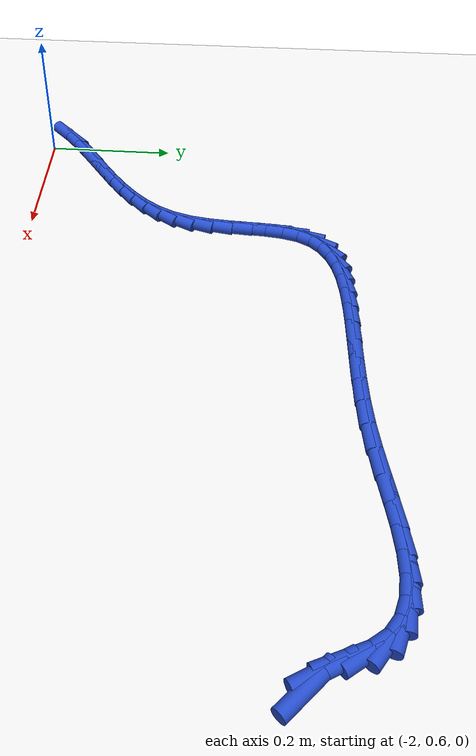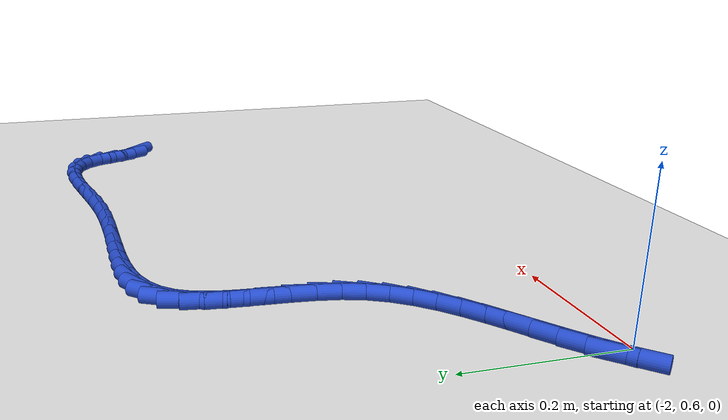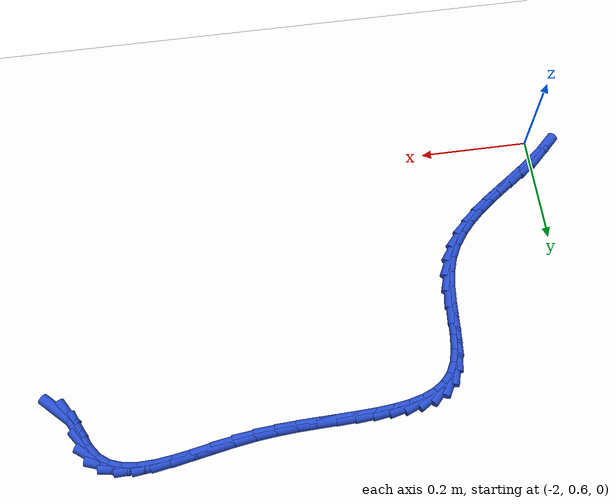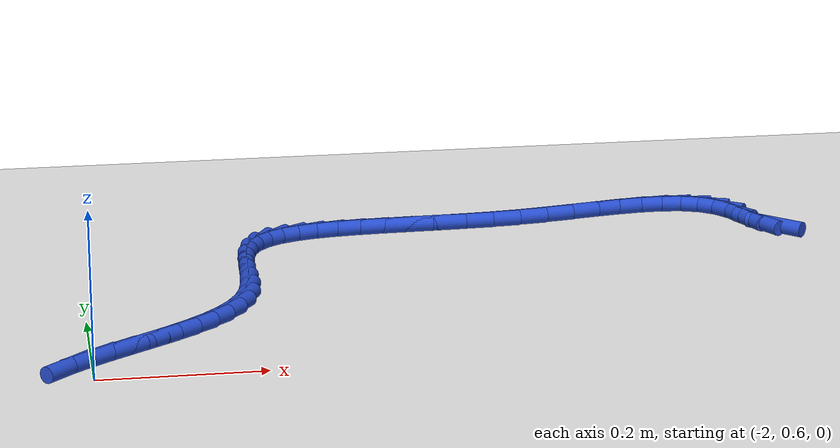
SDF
<sdf version="1.6">
 <world name="default">
  <model name="ground_plane">
   <static>1</static>
   <link name="link">
    <collision name="collision">
     <geometry><plane><normal>0 0 1</normal><size>100 100</size></plane></geometry>
     <surface><friction><ode><mu>100</mu><mu2>50</mu2></ode></friction></surface>
    </collision>
    <visual name="visual">
     <cast_shadows>0</cast_shadows>
     <geometry><plane><normal>0 0 1</normal><size>100 100</size></plane></geometry>
     <material>
      <script><uri>file://media/materials/scripts/gazebo.material</uri><name>Gazebo/WhiteGlow</name></script>
     </material>
    </visual>
   </link>
  </model>
  <model name="line">
   <link name="link_61">
    <pose>-1.0986709384747162 1.016808562275391 0.01 0 1.57 -0.7661085087782579</pose>
    <collision name="collision">
     <geometry><cylinder><radius>0.01</radius><length>0.08</length></cylinder></geometry>
    </collision>
    <visual name="visual">
     <material>
      <script><name>Gazebo/Blue</name><uri>file://media/materials/scripts/gazebo.material</uri></script>
     </material>
     <geometry><cylinder><radius>0.01</radius><length>0.08</length></cylinder></geometry>
    </visual>
   </link>
   <link name="link_62">
    <pose>-1.1168232129061668 1.034273703826723 0.01 0 1.57 -1.0577025748372646</pose>
    <collision name="collision">
     <geometry><cylinder><radius>0.01</radius><length>0.08</length></cylinder></geometry>
    </collision>
    <visual name="visual">
     <material>
      <script><name>Gazebo/Blue</name><uri>file://media/materials/scripts/gazebo.material</uri></script>
     </material>
     <geometry><cylinder><radius>0.01</radius><length>0.08</length></cylinder></geometry>
    </visual>
   </link>
   <link name="link_63">
    <pose>-1.1303156460028847 1.0582207654456048 0.01 0 1.57 -1.15449110105714</pose>
    <collision name="collision">
     <geometry><cylinder><radius>0.01</radius><length>0.08</length></cylinder></geometry>
    </collision>
    <visual name="visual">
     <material>
      <script><name>Gazebo/Blue</name><uri>file://media/materials/scripts/gazebo.material</uri></script>
     </material>
     <geometry><cylinder><radius>0.01</radius><length>0.08</length></cylinder></geometry>
    </visual>
   </link>
   <link name="link_64">
    <pose>-1.1419017484753529 1.0844248800468612 0.01 0 1.57 -0.946359937862854</pose>
    <collision name="collision">
     <geometry><cylinder><radius>0.01</radius><length>0.08</length></cylinder></geometry>
    </collision>
    <visual name="visual">
     <material>
      <script><name>Gazebo/Blue</name><uri>file://media/materials/scripts/gazebo.material</uri></script>
     </material>
     <geometry><cylinder><radius>0.01</radius><length>0.08</length></cylinder></geometry>
    </visual>
   </link>
   <link name="link_65">
    <pose>-1.156742101807256 1.1050185254911487 0.01 0 1.57 -0.628031557783788</pose>
    <collision name="collision">
     <geometry><cylinder><radius>0.01</radius><length>0.08</length></cylinder></geometry>
    </collision>
    <visual name="visual">
     <material>
      <script><name>Gazebo/Blue</name><uri>file://media/materials/scripts/gazebo.material</uri></script>
     </material>
     <geometry><cylinder><radius>0.01</radius><length>0.08</length></cylinder></geometry>
    </visual>
   </link>
   <link name="link_66">
    <pose>-1.1757560321607639 1.1188246194903382 0.01 0 1.57 -0.3377729639803013</pose>
    <collision name="collision">
     <geometry><cylinder><radius>0.01</radius><length>0.08</length></cylinder></geometry>
    </collision>
    <visual name="visual">
     <material>
      <script><name>Gazebo/Blue</name><uri>file://media/materials/scripts/gazebo.material</uri></script>
     </material>
     <geometry><cylinder><radius>0.01</radius><length>0.08</length></cylinder></geometry>
    </visual>
   </link>
   <link name="link_67">
    <pose>-1.1985004093002738 1.12681319853044 0.01 0 1.57 -0.12011137837838703</pose>
    <collision name="collision">
     <geometry><cylinder><radius>0.01</radius><length>0.08</length></cylinder></geometry>
    </collision>
    <visual name="visual">
     <material>
      <script><name>Gazebo/Blue</name><uri>file://media/materials/scripts/gazebo.material</uri></script>
     </material>
     <geometry><cylinder><radius>0.01</radius><length>0.08</length></cylinder></geometry>
    </visual>
   </link>
   <link name="link_68">
    <pose>-1.2245316754511222 1.1299549728637164 0.01 0 1.57 0.025425873986326102</pose>
    <collision name="collision">
     <geometry><cylinder><radius>0.01</radius><length>0.08</length></cylinder></geometry>
    </collision>
    <visual name="visual">
     <material>
      <script><name>Gazebo/Blue</name><uri>file://media/materials/scripts/gazebo.material</uri></script>
     </material>
     <geometry><cylinder><radius>0.01</radius><length>0.08</length></cylinder></geometry>
    </visual>
   </link>
   <link name="link_69">
    <pose>-1.2534062728386464 1.1292206527424316 0.01 0 1.57 0.1158585809026528</pose>
    <collision name="collision">
     <geometry><cylinder><radius>0.01</radius><length>0.08</length></cylinder></geometry>
    </collision>
    <visual name="visual">
     <material>
      <script><name>Gazebo/Blue</name><uri>file://media/materials/scripts/gazebo.material</uri></script>
     </material>
     <geometry><cylinder><radius>0.01</radius><length>0.08</length></cylinder></geometry>
    </visual>
   </link>
   <link name="link_70">
    <pose>-1.284680643688184 1.125580948418849 0.01 0 1.57 0.16620100585787467</pose>
    <collision name="collision">
     <geometry><cylinder><radius>0.01</radius><length>0.08</length></cylinder></geometry>
    </collision>
    <visual name="visual">
     <material>
      <script><name>Gazebo/Blue</name><uri>file://media/materials/scripts/gazebo.material</uri></script>
     </material>
     <geometry><cylinder><radius>0.01</radius><length>0.08</length></cylinder></geometry>
    </visual>
   </link>
   <link name="link_71">
    <pose>-1.31791123022507 1.1200065701452318 0.01 0 1.57 0.1860147328124729</pose>
    <collision name="collision">
     <geometry><cylinder><radius>0.01</radius><length>0.08</length></cylinder></geometry>
    </collision>
    <visual name="visual">
     <material>
      <script><name>Gazebo/Blue</name><uri>file://media/materials/scripts/gazebo.material</uri></script>
     </material>
     <geometry><cylinder><radius>0.01</radius><length>0.08</length></cylinder></geometry>
    </visual>
   </link>
   <link name="link_72">
    <pose>-1.3526544746746436 1.1134682281738448 0.01 0 1.57 0.1804010696848276</pose>
    <collision name="collision">
     <geometry><cylinder><radius>0.01</radius><length>0.08</length></cylinder></geometry>
    </collision>
    <visual name="visual">
     <material>
      <script><name>Gazebo/Blue</name><uri>file://media/materials/scripts/gazebo.material</uri></script>
     </material>
     <geometry><cylinder><radius>0.01</radius><length>0.08</length></cylinder></geometry>
    </visual>
   </link>
   <link name="link_73">
    <pose>-1.3884668192622402 1.10693663275695 0.01 0 1.57 0.15126325079539468</pose>
    <collision name="collision">
     <geometry><cylinder><radius>0.01</radius><length>0.08</length></cylinder></geometry>
    </collision>
    <visual name="visual">
     <material>
      <script><name>Gazebo/Blue</name><uri>file://media/materials/scripts/gazebo.material</uri></script>
     </material>
     <geometry><cylinder><radius>0.01</radius><length>0.08</length></cylinder></geometry>
    </visual>
   </link>
   <link name="link_74">
    <pose>-1.4249047062131979 1.1013824941468122 0.01 0 1.57 0.10404079286727165</pose>
    <collision name="collision">
     <geometry><cylinder><radius>0.01</radius><length>0.08</length></cylinder></geometry>
    </collision>
    <visual name="visual">
     <material>
      <script><name>Gazebo/Blue</name><uri>file://media/materials/scripts/gazebo.material</uri></script>
     </material>
     <geometry><cylinder><radius>0.01</radius><length>0.08</length></cylinder></geometry>
    </visual>
   </link>
   <link name="link_75">
    <pose>-1.4615363392845073 1.0975574988248649 0.01 0 1.57 0.06388331356993361</pose>
    <collision name="collision">
     <geometry><cylinder><radius>0.01</radius><length>0.08</length></cylinder></geometry>
    </collision>
    <visual name="visual">
     <material>
      <script><name>Gazebo/Blue</name><uri>file://media/materials/scripts/gazebo.material</uri></script>
     </material>
     <geometry><cylinder><radius>0.01</radius><length>0.08</length></cylinder></geometry>
    </visual>
   </link>
   <link name="link_76">
    <pose>-1.4979829420140895 1.0952259965301565 0.01 0 1.57 0.037637720357709056</pose>
    <collision name="collision">
     <geometry><cylinder><radius>0.01</radius><length>0.08</length></cylinder></geometry>
    </collision>
    <visual name="visual">
     <material>
      <script><name>Gazebo/Blue</name><uri>file://media/materials/scripts/gazebo.material</uri></script>
     </material>
     <geometry><cylinder><radius>0.01</radius><length>0.08</length></cylinder></geometry>
    </visual>
   </link>
   <link name="link_77">
    <pose>-1.533880671182647 1.0938742494838938 0.01 0 1.57 0.025312438782779025</pose>
    <collision name="collision">
     <geometry><cylinder><radius>0.01</radius><length>0.08</length></cylinder></geometry>
    </collision>
    <visual name="visual">
     <material>
      <script><name>Gazebo/Blue</name><uri>file://media/materials/scripts/gazebo.material</uri></script>
     </material>
     <geometry><cylinder><radius>0.01</radius><length>0.08</length></cylinder></geometry>
    </visual>
   </link>
   <link name="link_78">
    <pose>-1.5688656844090512 1.092988504298784 0.01 0 1.57 0.02768617504929569</pose>
    <collision name="collision">
     <geometry><cylinder><radius>0.01</radius><length>0.08</length></cylinder></geometry>
    </collision>
    <visual name="visual">
     <material>
      <script><name>Gazebo/Blue</name><uri>file://media/materials/scripts/gazebo.material</uri></script>
     </material>
     <geometry><cylinder><radius>0.01</radius><length>0.08</length></cylinder></geometry>
    </visual>
   </link>
   <link name="link_79">
    <pose>-1.6025741393121753 1.0920550075875377 0.01 0 1.57 0.046585924753033456</pose>
    <collision name="collision">
     <geometry><cylinder><radius>0.01</radius><length>0.08</length></cylinder></geometry>
    </collision>
    <visual name="visual">
     <material>
      <script><name>Gazebo/Blue</name><uri>file://media/materials/scripts/gazebo.material</uri></script>
     </material>
     <geometry><cylinder><radius>0.01</radius><length>0.08</length></cylinder></geometry>
    </visual>
   </link>
   <link name="link_80">
    <pose>-1.6346421935108923 1.0905600059628644 0.01 0 1.57 0.08528609727713993</pose>
    <collision name="collision">
     <geometry><cylinder><radius>0.01</radius><length>0.08</length></cylinder></geometry>
    </collision>
    <visual name="visual">
     <material>
      <script><name>Gazebo/Blue</name><uri>file://media/materials/scripts/gazebo.material</uri></script>
     </material>
     <geometry><cylinder><radius>0.01</radius><length>0.08</length></cylinder></geometry>
    </visual>
   </link>
   <link name="link_81">
    <pose>-1.6647060046240738 1.0879897460374728 0.01 0 1.57 0.14906342334819844</pose>
    <collision name="collision">
     <geometry><cylinder><radius>0.01</radius><length>0.08</length></cylinder></geometry>
    </collision>
    <visual name="visual">
     <material>
      <script><name>Gazebo/Blue</name><uri>file://media/materials/scripts/gazebo.material</uri></script>
     </material>
     <geometry><cylinder><radius>0.01</radius><length>0.08</length></cylinder></geometry>
    </visual>
   </link>
   <link name="link_82">
    <pose>-1.6924017302705938 1.0838304744240728 0.01 0 1.57 0.24577352876729924</pose>
    <collision name="collision">
     <geometry><cylinder><radius>0.01</radius><length>0.08</length></cylinder></geometry>
    </collision>
    <visual name="visual">
     <material>
      <script><name>Gazebo/Blue</name><uri>file://media/materials/scripts/gazebo.material</uri></script>
     </material>
     <geometry><cylinder><radius>0.01</radius><length>0.08</length></cylinder></geometry>
    </visual>
   </link>
   <link name="link_83">
    <pose>-1.7173655280693252 1.0775684377353731 0.01 0 1.57 0.38567340300746383</pose>
    <collision name="collision">
     <geometry><cylinder><radius>0.01</radius><length>0.08</length></cylinder></geometry>
    </collision>
    <visual name="visual">
     <material>
      <script><name>Gazebo/Blue</name><uri>file://media/materials/scripts/gazebo.material</uri></script>
     </material>
     <geometry><cylinder><radius>0.01</radius><length>0.08</length></cylinder></geometry>
    </visual>
   </link>
   <link name="link_84">
    <pose>-1.73923355563914 1.068689882584084 0.01 0 1.57 0.5780291835703463</pose>
    <collision name="collision">
     <geometry><cylinder><radius>0.01</radius><length>0.08</length></cylinder></geometry>
    </collision>
    <visual name="visual">
     <material>
      <script><name>Gazebo/Blue</name><uri>file://media/materials/scripts/gazebo.material</uri></script>
     </material>
     <geometry><cylinder><radius>0.01</radius><length>0.08</length></cylinder></geometry>
    </visual>
   </link>
   <link name="link_85">
    <pose>-1.7576419705989113 1.0566810555829143 0.01 0 1.57 0.8206999444100108</pose>
    <collision name="collision">
     <geometry><cylinder><radius>0.01</radius><length>0.08</length></cylinder></geometry>
    </collision>
    <visual name="visual">
     <material>
      <script><name>Gazebo/Blue</name><uri>file://media/materials/scripts/gazebo.material</uri></script>
     </material>
     <geometry><cylinder><radius>0.01</radius><length>0.08</length></cylinder></geometry>
    </visual>
   </link>
   <link name="link_86">
    <pose>-1.7722269305675116 1.041028203344573 0.01 0 1.57 1.0871626164995747</pose>
    <collision name="collision">
     <geometry><cylinder><radius>0.01</radius><length>0.08</length></cylinder></geometry>
    </collision>
    <visual name="visual">
     <material>
      <script><name>Gazebo/Blue</name><uri>file://media/materials/scripts/gazebo.material</uri></script>
     </material>
     <geometry><cylinder><radius>0.01</radius><length>0.08</length></cylinder></geometry>
    </visual>
   </link>
   <link name="link_87">
    <pose>-1.782629692463251 1.0212224047163236 0.01 0 1.57 1.309896327463428</pose>
    <collision name="collision">
     <geometry><cylinder><radius>0.01</radius><length>0.08</length></cylinder></geometry>
    </collision>
    <visual name="visual">
     <material>
      <script><name>Gazebo/Blue</name><uri>file://media/materials/scripts/gazebo.material</uri></script>
     </material>
     <geometry><cylinder><radius>0.01</radius><length>0.08</length></cylinder></geometry>
    </visual>
   </link>
   <link name="link_88">
    <pose>-1.7890267797682853 0.9972619716697152 0.01 0 1.57 1.440290922737253</pose>
    <collision name="collision">
     <geometry><cylinder><radius>0.01</radius><length>0.08</length></cylinder></geometry>
    </collision>
    <visual name="visual">
     <material>
      <script><name>Gazebo/Blue</name><uri>file://media/materials/scripts/gazebo.material</uri></script>
     </material>
     <geometry><cylinder><radius>0.01</radius><length>0.08</length></cylinder></geometry>
    </visual>
   </link>
   <link name="link_89">
    <pose>-1.7925929814836794 0.9700911996772748 0.01 0 1.57 1.5020672415828666</pose>
    <collision name="collision">
     <geometry><cylinder><radius>0.01</radius><length>0.08</length></cylinder></geometry>
    </collision>
    <visual name="visual">
     <material>
      <script><name>Gazebo/Blue</name><uri>file://media/materials/scripts/gazebo.material</uri></script>
     </material>
     <geometry><cylinder><radius>0.01</radius><length>0.08</length></cylinder></geometry>
    </visual>
   </link>
   <link name="link_90">
    <pose>-1.7946122195230323 0.9407578015215693 0.01 0 1.57 1.513182206559518</pose>
    <collision name="collision">
     <geometry><cylinder><radius>0.01</radius><length>0.08</length></cylinder></geometry>
    </collision>
    <visual name="visual">
     <material>
      <script><name>Gazebo/Blue</name><uri>file://media/materials/scripts/gazebo.material</uri></script>
     </material>
     <geometry><cylinder><radius>0.01</radius><length>0.08</length></cylinder></geometry>
    </visual>
   </link>
   <link name="link_91">
    <pose>-1.7963684157999416 0.9103094899851641 0.01 0 1.57 1.4800409194499382</pose>
    <collision name="collision">
     <geometry><cylinder><radius>0.01</radius><length>0.08</length></cylinder></geometry>
    </collision>
    <visual name="visual">
     <material>
      <script><name>Gazebo/Blue</name><uri>file://media/materials/scripts/gazebo.material</uri></script>
     </material>
     <geometry><cylinder><radius>0.01</radius><length>0.08</length></cylinder></geometry>
    </visual>
   </link>
   <link name="link_92">
    <pose>-1.7991454922280048 0.8797939778506259 0.01 0 1.57 1.4004018740629387</pose>
    <collision name="collision">
     <geometry><cylinder><radius>0.01</radius><length>0.08</length></cylinder></geometry>
    </collision>
    <visual name="visual">
     <material>
      <script><name>Gazebo/Blue</name><uri>file://media/materials/scripts/gazebo.material</uri></script>
     </material>
     <geometry><cylinder><radius>0.01</radius><length>0.08</length></cylinder></geometry>
    </visual>
   </link>
   <link name="link_93">
    <pose>-1.804227370720822 0.8502589779005212 0.01 0 1.57 1.266217626793724</pose>
    <collision name="collision">
     <geometry><cylinder><radius>0.01</radius><length>0.08</length></cylinder></geometry>
    </collision>
    <visual name="visual">
     <material>
      <script><name>Gazebo/Blue</name><uri>file://media/materials/scripts/gazebo.material</uri></script>
     </material>
     <geometry><cylinder><radius>0.01</radius><length>0.08</length></cylinder></geometry>
    </visual>
   </link>
   <link name="link_94">
    <pose>-1.81287887522662 0.8227379887802092 0.01 0 1.57 1.1013077468939594</pose>
    <collision name="collision">
     <geometry><cylinder><radius>0.01</radius><length>0.08</length></cylinder></geometry>
    </collision>
    <visual name="visual">
     <material>
      <script><name>Gazebo/Blue</name><uri>file://media/materials/scripts/gazebo.material</uri></script>
     </material>
     <geometry><cylinder><radius>0.01</radius><length>0.08</length></cylinder></geometry>
    </visual>
   </link>
   <link name="link_95">
    <pose>-1.8255881072937448 0.797686414110317 0.01 0 1.57 0.9542079987759067</pose>
    <collision name="collision">
     <geometry><cylinder><radius>0.01</radius><length>0.08</length></cylinder></geometry>
    </collision>
    <visual name="visual">
     <material>
      <script><name>Gazebo/Blue</name><uri>file://media/materials/scripts/gazebo.material</uri></script>
     </material>
     <geometry><cylinder><radius>0.01</radius><length>0.08</length></cylinder></geometry>
    </visual>
   </link>
   <link name="link_96">
    <pose>-1.8418138811906086 0.7747935847734622 0.01 0 1.57 0.8342617564033474</pose>
    <collision name="collision">
     <geometry><cylinder><radius>0.01</radius><length>0.08</length></cylinder></geometry>
    </collision>
    <visual name="visual">
     <material>
      <script><name>Gazebo/Blue</name><uri>file://media/materials/scripts/gazebo.material</uri></script>
     </material>
     <geometry><cylinder><radius>0.01</radius><length>0.08</length></cylinder></geometry>
    </visual>
   </link>
   <link name="link_97">
    <pose>-1.8609441417907553 0.7536960853369932 0.01 0 1.57 0.7426600058220382</pose>
    <collision name="collision">
     <geometry><cylinder><radius>0.01</radius><length>0.08</length></cylinder></geometry>
    </collision>
    <visual name="visual">
     <material>
      <script><name>Gazebo/Blue</name><uri>file://media/materials/scripts/gazebo.material</uri></script>
     </material>
     <geometry><cylinder><radius>0.01</radius><length>0.08</length></cylinder></geometry>
    </visual>
   </link>
   <link name="link_98">
    <pose>-1.8823668339677275 0.7340305003682601 0.01 0 1.57 0.6777590690856675</pose>
    <collision name="collision">
     <geometry><cylinder><radius>0.01</radius><length>0.08</length></cylinder></geometry>
    </collision>
    <visual name="visual">
     <material>
      <script><name>Gazebo/Blue</name><uri>file://media/materials/scripts/gazebo.material</uri></script>
     </material>
     <geometry><cylinder><radius>0.01</radius><length>0.08</length></cylinder></geometry>
    </visual>
   </link>
   <link name="link_99">
    <pose>-1.9054699025950699 0.7154334144346124 0.01 0 1.57 0.6372086228797486</pose>
    <collision name="collision">
     <geometry><cylinder><radius>0.01</radius><length>0.08</length></cylinder></geometry>
    </collision>
    <visual name="visual">
     <material>
      <script><name>Gazebo/Blue</name><uri>file://media/materials/scripts/gazebo.material</uri></script>
     </material>
     <geometry><cylinder><radius>0.01</radius><length>0.08</length></cylinder></geometry>
    </visual>
   </link>
   <link name="link_100">
    <pose>-1.9296412925463247 0.6975414121033994 0.01 0 1.57 0.6191503250979705</pose>
    <collision name="collision">
     <geometry><cylinder><radius>0.01</radius><length>0.08</length></cylinder></geometry>
    </collision>
    <visual name="visual">
     <material>
      <script><name>Gazebo/Blue</name><uri>file://media/materials/scripts/gazebo.material</uri></script>
     </material>
     <geometry><cylinder><radius>0.01</radius><length>0.08</length></cylinder></geometry>
    </visual>
   </link>
   <link name="link_101">
    <pose>-1.9542689486950355 0.6799910779419709 0.01 0 1.57 0.6227391598527053</pose>
    <collision name="collision">
     <geometry><cylinder><radius>0.01</radius><length>0.08</length></cylinder></geometry>
    </collision>
    <visual name="visual">
     <material>
      <script><name>Gazebo/Blue</name><uri>file://media/materials/scripts/gazebo.material</uri></script>
     </material>
     <geometry><cylinder><radius>0.01</radius><length>0.08</length></cylinder></geometry>
    </visual>
   </link>
   <link name="link_102">
    <pose>-1.978740815914746 0.6624189965176759 0.01 0 1.57 0.6483226295268837</pose>
    <collision name="collision">
     <geometry><cylinder><radius>0.01</radius><length>0.08</length></cylinder></geometry>
    </collision>
    <visual name="visual">
     <material>
      <script><name>Gazebo/Blue</name><uri>file://media/materials/scripts/gazebo.material</uri></script>
     </material>
     <geometry><cylinder><radius>0.01</radius><length>0.08</length></cylinder></geometry>
    </visual>
   </link>
   <link name="link_103">
    <pose>-2.0024448390789993 0.6444617523978643 0.01 0 1.57 0.6974388594456521</pose>
    <collision name="collision">
     <geometry><cylinder><radius>0.01</radius><length>0.08</length></cylinder></geometry>
    </collision>
    <visual name="visual">
     <material>
      <script><name>Gazebo/Blue</name><uri>file://media/materials/scripts/gazebo.material</uri></script>
     </material>
     <geometry><cylinder><radius>0.01</radius><length>0.08</length></cylinder></geometry>
    </visual>
   </link>
   <link name="link_104">
    <pose>-2.0247689630613386 0.6257559301498855 0.01 0 1.57 0.7725880534133698</pose>
    <collision name="collision">
     <geometry><cylinder><radius>0.01</radius><length>0.08</length></cylinder></geometry>
    </collision>
    <visual name="visual">
     <material>
      <script><name>Gazebo/Blue</name><uri>file://media/materials/scripts/gazebo.material</uri></script>
     </material>
     <geometry><cylinder><radius>0.01</radius><length>0.08</length></cylinder></geometry>
    </visual>
   </link>
  </model>
 </world>
</sdf>
